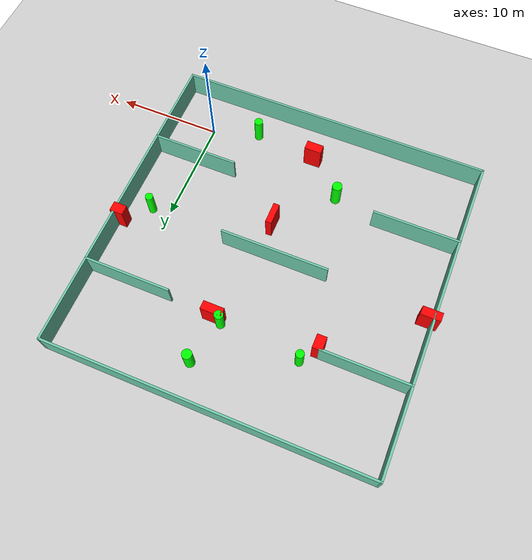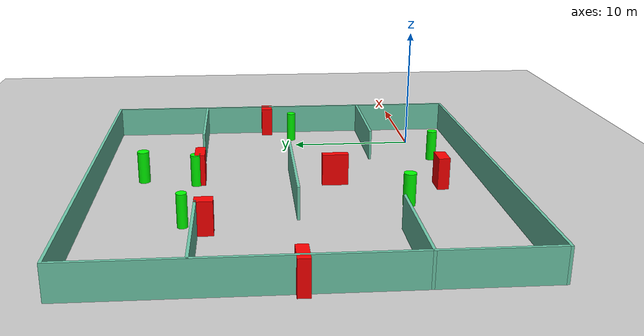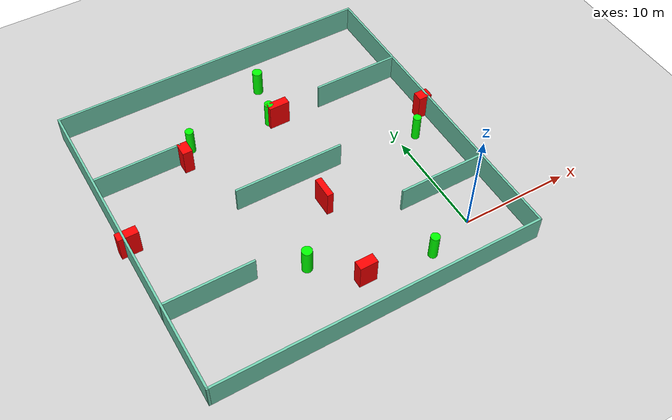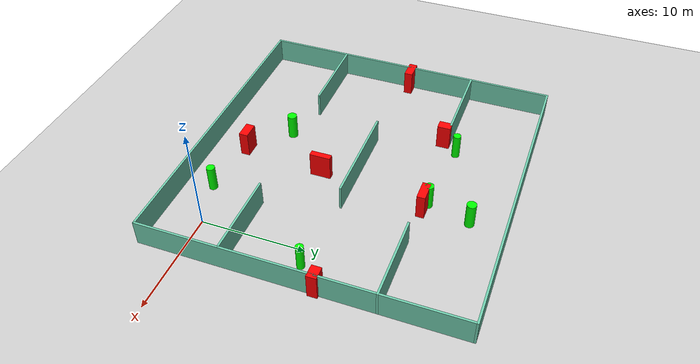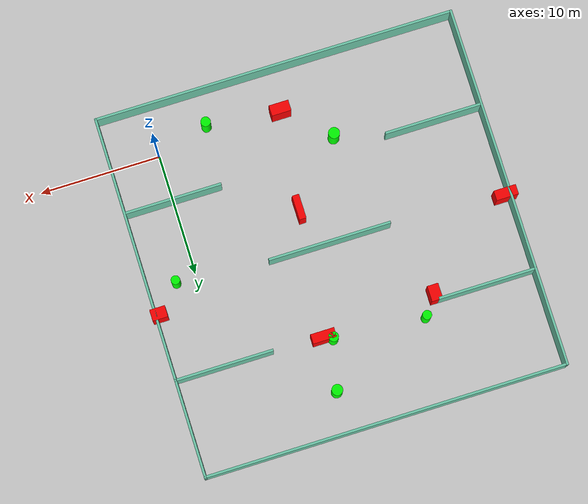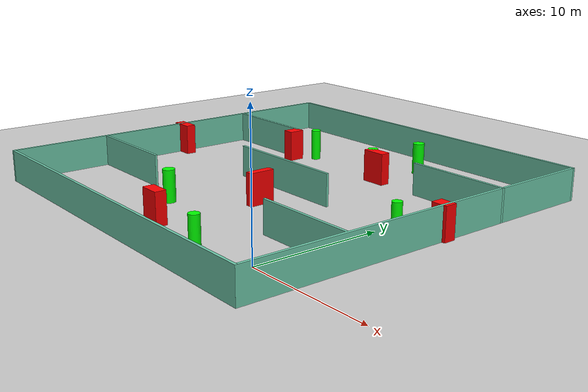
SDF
<sdf version="1.7">
 <world name="default">
  <light name="sun" type="directional">
   <pose>0 0 10 0 -0 0</pose>
   <diffuse>0.8 0.8 0.8 1</diffuse>
   <specular>0.2 0.2 0.2 1</specular>
   <attenuation>
    <range>1000</range>
    <constant>0.9</constant>
    <linear>0.01</linear>
    <quadratic>0.001</quadratic>
   </attenuation>
   <direction>-0.5 0.1 -0.9</direction>
   <spot><inner_angle>0</inner_angle><outer_angle>0</outer_angle><falloff>0</falloff></spot>
  </light>
  <model name="ground_plane">
   <static>1</static>
   <link name="link">
    <collision name="collision">
     <geometry><plane><normal>0 0 1</normal><size>100 100</size></plane></geometry>
     <surface>
      <contact><collide_bitmask>65535</collide_bitmask></contact>
      <friction><ode><mu>100</mu><mu2>50</mu2></ode></friction>
     </surface>
    </collision>
    <visual name="visual">
     <cast_shadows>0</cast_shadows>
     <geometry><plane><normal>0 0 1</normal><size>100 100</size></plane></geometry>
     <material>
      <script><uri>file://media/materials/scripts/gazebo.material</uri><name>Gazebo/Grey</name></script>
     </material>
    </visual>
   </link>
  </model>
  <gravity>0 0 -9.8</gravity>
  <magnetic_field>6e-06 2.3e-05 -4.2e-05</magnetic_field>
  <atmosphere type="adiabatic"/>
  <physics type="ode">
   <max_step_size>0.001</max_step_size>
   <real_time_factor>1</real_time_factor>
   <real_time_update_rate>1000</real_time_update_rate>
  </physics>
  <scene><ambient>0.4 0.4 0.4 1</ambient><background>0.7 0.7 0.7 1</background><shadows>1</shadows></scene>
  <spherical_coordinates>
   <surface_model>EARTH_WGS84</surface_model>
   <latitude_deg>0</latitude_deg>
   <longitude_deg>0</longitude_deg>
   <elevation>0</elevation>
   <heading_deg>0</heading_deg>
  </spherical_coordinates>
  <model name="my_base_walls">
   <link name="Wall_10">
    <collision name="Wall_10_Collision">
     <geometry><box><size>8.2 0.2 2.5</size></box></geometry>
     <pose>0 0 1.25 0 -0 0</pose>
    </collision>
    <visual name="Wall_10_Visual">
     <pose>0 0 1.25 0 -0 0</pose>
     <geometry><box><size>8.2 0.2 2.5</size></box></geometry>
     <material>
      <script><uri>file://media/materials/scripts/gazebo.material</uri><name>Gazebo/Grey</name></script>
      <ambient>0.435294 0.796078 0.67451 1</ambient>
     </material>
     <meta><layer>0</layer></meta>
    </visual>
    <pose>-11 -7 0 0 -0 0</pose>
   </link>
   <link name="Wall_12">
    <collision name="Wall_12_Collision">
     <geometry><box><size>8.2 0.2 2.5</size></box></geometry>
     <pose>0 0 1.25 0 -0 0</pose>
    </collision>
    <visual name="Wall_12_Visual">
     <pose>0 0 1.25 0 -0 0</pose>
     <geometry><box><size>8.2 0.2 2.5</size></box></geometry>
     <material>
      <script><uri>file://media/materials/scripts/gazebo.material</uri><name>Gazebo/Grey</name></script>
      <ambient>0.435294 0.796078 0.67451 1</ambient>
     </material>
     <meta><layer>0</layer></meta>
    </visual>
    <pose>-11 7 0 0 -0 0</pose>
   </link>
   <link name="Wall_14">
    <collision name="Wall_14_Collision">
     <geometry><box><size>8.2 0.2 2.5</size></box></geometry>
     <pose>0 0 1.25 0 -0 0</pose>
    </collision>
    <visual name="Wall_14_Visual">
     <pose>0 0 1.25 0 -0 0</pose>
     <geometry><box><size>8.2 0.2 2.5</size></box></geometry>
     <material>
      <script><uri>file://media/materials/scripts/gazebo.material</uri><name>Gazebo/Grey</name></script>
      <ambient>0.435294 0.796078 0.67451 1</ambient>
     </material>
     <meta><layer>0</layer></meta>
    </visual>
    <pose>11 7 0 0 -0 3.14159</pose>
   </link>
   <link name="Wall_16">
    <collision name="Wall_16_Collision">
     <geometry><box><size>10.2 0.2 2.5</size></box></geometry>
     <pose>0 0 1.25 0 -0 0</pose>
    </collision>
    <visual name="Wall_16_Visual">
     <pose>0 0 1.25 0 -0 0</pose>
     <geometry><box><size>10.2 0.2 2.5</size></box></geometry>
     <material>
      <script><uri>file://media/materials/scripts/gazebo.material</uri><name>Gazebo/Grey</name></script>
      <ambient>0.435294 0.796078 0.67451 1</ambient>
     </material>
     <meta><layer>0</layer></meta>
    </visual>
    <pose>0 0 0 0 -0 3.14159</pose>
   </link>
   <link name="Wall_2">
    <collision name="Wall_2_Collision">
     <geometry><box><size>30.2 0.2 2.5</size></box></geometry>
     <pose>0 0 1.25 0 -0 0</pose>
    </collision>
    <visual name="Wall_2_Visual">
     <pose>0 0 1.25 0 -0 0</pose>
     <geometry><box><size>30.2 0.2 2.5</size></box></geometry>
     <material>
      <script><uri>file://media/materials/scripts/gazebo.material</uri><name>Gazebo/Grey</name></script>
      <ambient>0.435294 0.796078 0.67451 1</ambient>
     </material>
     <meta><layer>0</layer></meta>
    </visual>
    <pose>0 -15 0 0 -0 3.14159</pose>
   </link>
   <link name="Wall_3">
    <collision name="Wall_3_Collision">
     <geometry><box><size>30.2 0.2 2.5</size></box></geometry>
     <pose>0 0 1.25 0 -0 0</pose>
    </collision>
    <visual name="Wall_3_Visual">
     <pose>0 0 1.25 0 -0 0</pose>
     <geometry><box><size>30.2 0.2 2.5</size></box></geometry>
     <material>
      <script><uri>file://media/materials/scripts/gazebo.material</uri><name>Gazebo/Grey</name></script>
      <ambient>0.435294 0.796078 0.67451 1</ambient>
     </material>
     <meta><layer>0</layer></meta>
    </visual>
    <pose>-15 0 0 0 -0 1.5708</pose>
   </link>
   <link name="Wall_4">
    <collision name="Wall_4_Collision">
     <geometry><box><size>30.2 0.2 2.5</size></box></geometry>
     <pose>0 0 1.25 0 -0 0</pose>
    </collision>
    <visual name="Wall_4_Visual">
     <pose>0 0 1.25 0 -0 0</pose>
     <geometry><box><size>30.2 0.2 2.5</size></box></geometry>
     <material>
      <script><uri>file://media/materials/scripts/gazebo.material</uri><name>Gazebo/Grey</name></script>
      <ambient>0.435294 0.796078 0.67451 1</ambient>
     </material>
     <meta><layer>0</layer></meta>
    </visual>
    <pose>0 15 0 0 -0 0</pose>
   </link>
   <link name="Wall_6">
    <collision name="Wall_6_Collision">
     <geometry><box><size>30.2 0.2 2.5</size></box></geometry>
     <pose>0 0 1.25 0 -0 0</pose>
    </collision>
    <visual name="Wall_6_Visual">
     <pose>0 0 1.25 0 -0 0</pose>
     <geometry><box><size>30.2 0.2 2.5</size></box></geometry>
     <material>
      <script><uri>file://media/materials/scripts/gazebo.material</uri><name>Gazebo/Grey</name></script>
      <ambient>0.435294 0.796078 0.67451 1</ambient>
     </material>
     <meta><layer>0</layer></meta>
    </visual>
    <pose>15 0 0 0 -0 1.5708</pose>
   </link>
   <link name="Wall_8">
    <collision name="Wall_8_Collision">
     <geometry><box><size>8.2 0.2 2.5</size></box></geometry>
     <pose>0 0 1.25 0 -0 0</pose>
    </collision>
    <visual name="Wall_8_Visual">
     <pose>0 0 1.25 0 -0 0</pose>
     <geometry><box><size>8.2 0.2 2.5</size></box></geometry>
     <material>
      <script><uri>file://media/materials/scripts/gazebo.material</uri><name>Gazebo/Grey</name></script>
      <ambient>0.435294 0.796078 0.67451 1</ambient>
     </material>
     <meta><layer>0</layer></meta>
    </visual>
    <pose>11 -7 0 0 -0 3.14159</pose>
   </link>
   <static>1</static>
   <pose>-11 11 0 0 -0 0</pose>
  </model>
  <model name="cylinder1">
   <static>1</static>
   <link name="link">
    <inertial>
     <mass>1</mass>
     <inertia><ixx>0.5</ixx><ixy>0</ixy><ixz>0</ixz><iyy>0.5</iyy><iyz>0</iyz><izz>1</izz></inertia>
    </inertial>
    <collision name="collision">
     <geometry><cylinder><radius>0.45576615456974046</radius><length>2.5</length></cylinder></geometry>
    </collision>
    <visual name="visual">
     <geometry><cylinder><radius>0.45576615456974046</radius><length>2.5</length></cylinder></geometry>
     <material>
      <ambient>0 1 0 1</ambient>
      <diffuse>0 1 0 1</diffuse>
      <specular>0.1 0.1 0.1 1</specular>
      <emissive>0 0 0 0</emissive>
     </material>
    </visual>
   </link>
   <pose>-7.98858308088303 22.54564964759097 1.25 0 0 0</pose>
  </model>
  <model name="cylinder2">
   <static>1</static>
   <link name="link">
    <inertial>
     <mass>1</mass>
     <inertia><ixx>0.5</ixx><ixy>0</ixy><ixz>0</ixz><iyy>0.5</iyy><iyz>0</iyz><izz>1</izz></inertia>
    </inertial>
    <collision name="collision">
     <geometry><cylinder><radius>0.41095859952349334</radius><length>2.5</length></cylinder></geometry>
    </collision>
    <visual name="visual">
     <geometry><cylinder><radius>0.41095859952349334</radius><length>2.5</length></cylinder></geometry>
     <material>
      <ambient>0 1 0 1</ambient>
      <diffuse>0 1 0 1</diffuse>
      <specular>0.1 0.1 0.1 1</specular>
      <emissive>0 0 0 0</emissive>
     </material>
    </visual>
   </link>
   <pose>-8.992939417291277 18.423315348993647 1.25 0 0 0</pose>
  </model>
  <model name="cylinder3">
   <static>1</static>
   <link name="link">
    <inertial>
     <mass>1</mass>
     <inertia><ixx>0.5</ixx><ixy>0</ixy><ixz>0</ixz><iyy>0.5</iyy><iyz>0</iyz><izz>1</izz></inertia>
    </inertial>
    <collision name="collision">
     <geometry><cylinder><radius>0.46532595379096947</radius><length>2.5</length></cylinder></geometry>
    </collision>
    <visual name="visual">
     <geometry><cylinder><radius>0.46532595379096947</radius><length>2.5</length></cylinder></geometry>
     <material>
      <ambient>0 1 0 1</ambient>
      <diffuse>0 1 0 1</diffuse>
      <specular>0.1 0.1 0.1 1</specular>
      <emissive>0 0 0 0</emissive>
     </material>
    </visual>
   </link>
   <pose>-13.960968821614841 2.7550779039016264 1.25 0 0 0</pose>
  </model>
  <model name="cylinder4">
   <static>1</static>
   <link name="link">
    <inertial>
     <mass>1</mass>
     <inertia><ixx>0.5</ixx><ixy>0</ixy><ixz>0</ixz><iyy>0.5</iyy><iyz>0</iyz><izz>1</izz></inertia>
    </inertial>
    <collision name="collision">
     <geometry><cylinder><radius>0.3684000201668095</radius><length>2.5</length></cylinder></geometry>
    </collision>
    <visual name="visual">
     <geometry><cylinder><radius>0.3684000201668095</radius><length>2.5</length></cylinder></geometry>
     <material>
      <ambient>0 1 0 1</ambient>
      <diffuse>0 1 0 1</diffuse>
      <specular>0.1 0.1 0.1 1</specular>
      <emissive>0 0 0 0</emissive>
     </material>
    </visual>
   </link>
   <pose>1.6663317486191076 10.348265304522709 1.25 0 0 0</pose>
  </model>
  <model name="cylinder5">
   <static>1</static>
   <link name="link">
    <inertial>
     <mass>1</mass>
     <inertia><ixx>0.5</ixx><ixy>0</ixy><ixz>0</ixz><iyy>0.5</iyy><iyz>0</iyz><izz>1</izz></inertia>
    </inertial>
    <collision name="collision">
     <geometry><cylinder><radius>0.40548245941133376</radius><length>2.5</length></cylinder></geometry>
    </collision>
    <visual name="visual">
     <geometry><cylinder><radius>0.40548245941133376</radius><length>2.5</length></cylinder></geometry>
     <material>
      <ambient>0 1 0 1</ambient>
      <diffuse>0 1 0 1</diffuse>
      <specular>0.1 0.1 0.1 1</specular>
      <emissive>0 0 0 0</emissive>
     </material>
    </visual>
   </link>
   <pose>-4.3915211612887735 -1.2030167889902632 1.25 0 0 0</pose>
  </model>
  <model name="cylinder6">
   <static>1</static>
   <link name="link">
    <inertial>
     <mass>1</mass>
     <inertia><ixx>0.5</ixx><ixy>0</ixy><ixz>0</ixz><iyy>0.5</iyy><iyz>0</iyz><izz>1</izz></inertia>
    </inertial>
    <collision name="collision">
     <geometry><cylinder><radius>0.38138712068178354</radius><length>2.5</length></cylinder></geometry>
    </collision>
    <visual name="visual">
     <geometry><cylinder><radius>0.38138712068178354</radius><length>2.5</length></cylinder></geometry>
     <material>
      <ambient>0 1 0 1</ambient>
      <diffuse>0 1 0 1</diffuse>
      <specular>0.1 0.1 0.1 1</specular>
      <emissive>0 0 0 0</emissive>
     </material>
    </visual>
   </link>
   <pose>-16.595528902066267 18.983022104685038 1.25 0 0 0</pose>
  </model>
  <model name="box1">
   <static>1</static>
   <link name="link">
    <inertial>
     <mass>1</mass>
     <inertia><ixx>0.083</ixx><ixy>0</ixy><ixz>0</ixz><iyy>0.083</iyy><iyz>0</iyz><izz>0.083</izz></inertia>
    </inertial>
    <collision name="collision">
     <geometry><box><size>0.5809707124337253 2.020719520146123 2.5</size></box></geometry>
    </collision>
    <visual name="visual">
     <geometry><box><size>0.5809707124337253 2.020719520146123 2.5</size></box></geometry>
     <material>
      <ambient>1 0 0 1</ambient>
      <diffuse>1 0 0 1</diffuse>
      <specular>0.1 0.1 0.1 1</specular>
      <emissive>0 0 0 0</emissive>
     </material>
    </visual>
    <sensor name="my_contact" type="contact">
     <contact><collision>box_collision</collision><topic>__default_topic__</topic></contact>
    </sensor>
   </link>
   <pose>-9.489712543614797 7.662986472383059 1.25 0 0 0</pose>
  </model>
  <model name="box2">
   <static>1</static>
   <link name="link">
    <inertial>
     <mass>1</mass>
     <inertia><ixx>0.083</ixx><ixy>0</ixy><ixz>0</ixz><iyy>0.083</iyy><iyz>0</iyz><izz>0.083</izz></inertia>
    </inertial>
    <collision name="collision">
     <geometry><box><size>1.8403050352264971 0.8181551363962452 2.5</size></box></geometry>
    </collision>
    <visual name="visual">
     <geometry><box><size>1.8403050352264971 0.8181551363962452 2.5</size></box></geometry>
     <material>
      <ambient>1 0 0 1</ambient>
      <diffuse>1 0 0 1</diffuse>
      <specular>0.1 0.1 0.1 1</specular>
      <emissive>0 0 0 0</emissive>
     </material>
    </visual>
    <sensor name="my_contact" type="contact">
     <contact><collision>box_collision</collision><topic>__default_topic__</topic></contact>
    </sensor>
   </link>
   <pose>-25.647726551428924 11.484313239466413 1.25 0 0 0</pose>
  </model>
  <model name="box3">
   <static>1</static>
   <link name="link">
    <inertial>
     <mass>1</mass>
     <inertia><ixx>0.083</ixx><ixy>0</ixy><ixz>0</ixz><iyy>0.083</iyy><iyz>0</iyz><izz>0.083</izz></inertia>
    </inertial>
    <collision name="collision">
     <geometry><box><size>1.62979175816036 0.8850476684640227 2.5</size></box></geometry>
    </collision>
    <visual name="visual">
     <geometry><box><size>1.62979175816036 0.8850476684640227 2.5</size></box></geometry>
     <material>
      <ambient>1 0 0 1</ambient>
      <diffuse>1 0 0 1</diffuse>
      <specular>0.1 0.1 0.1 1</specular>
      <emissive>0 0 0 0</emissive>
     </material>
    </visual>
    <sensor name="my_contact" type="contact">
     <contact><collision>box_collision</collision><topic>__default_topic__</topic></contact>
    </sensor>
   </link>
   <pose>-10.433337228283452 -0.4897272025910486 1.25 0 0 0</pose>
  </model>
  <model name="box4">
   <static>1</static>
   <link name="link">
    <inertial>
     <mass>1</mass>
     <inertia><ixx>0.083</ixx><ixy>0</ixy><ixz>0</ixz><iyy>0.083</iyy><iyz>0</iyz><izz>0.083</izz></inertia>
    </inertial>
    <collision name="collision">
     <geometry><box><size>0.9119987430346788 1.2927473990125131 2.5</size></box></geometry>
    </collision>
    <visual name="visual">
     <geometry><box><size>0.9119987430346788 1.2927473990125131 2.5</size></box></geometry>
     <material>
      <ambient>1 0 0 1</ambient>
      <diffuse>1 0 0 1</diffuse>
      <specular>0.1 0.1 0.1 1</specular>
      <emissive>0 0 0 0</emissive>
     </material>
    </visual>
    <sensor name="my_contact" type="contact">
     <contact><collision>box_collision</collision><topic>__default_topic__</topic></contact>
    </sensor>
   </link>
   <pose>-17.749220748745696 17.44930430981276 1.25 0 0 0</pose>
  </model>
  <model name="box5">
   <static>1</static>
   <link name="link">
    <inertial>
     <mass>1</mass>
     <inertia><ixx>0.083</ixx><ixy>0</ixy><ixz>0</ixz><iyy>0.083</iyy><iyz>0</iyz><izz>0.083</izz></inertia>
    </inertial>
    <collision name="collision">
     <geometry><box><size>1.9508653905875548 0.7900039983444098 2.5</size></box></geometry>
    </collision>
    <visual name="visual">
     <geometry><box><size>1.9508653905875548 0.7900039983444098 2.5</size></box></geometry>
     <material>
      <ambient>1 0 0 1</ambient>
      <diffuse>1 0 0 1</diffuse>
      <specular>0.1 0.1 0.1 1</specular>
      <emissive>0 0 0 0</emissive>
     </material>
    </visual>
    <sensor name="my_contact" type="contact">
     <contact><collision>box_collision</collision><topic>__default_topic__</topic></contact>
    </sensor>
   </link>
   <pose>-8.251801082165906 18.110786269927292 1.25 0 0 0</pose>
  </model>
  <model name="box6">
   <static>1</static>
   <link name="link">
    <inertial>
     <mass>1</mass>
     <inertia><ixx>0.083</ixx><ixy>0</ixy><ixz>0</ixz><iyy>0.083</iyy><iyz>0</iyz><izz>0.083</izz></inertia>
    </inertial>
    <collision name="collision">
     <geometry><box><size>1.2674551823547908 0.9361898718268462 2.5</size></box></geometry>
    </collision>
    <visual name="visual">
     <geometry><box><size>1.2674551823547908 0.9361898718268462 2.5</size></box></geometry>
     <material>
      <ambient>1 0 0 1</ambient>
      <diffuse>1 0 0 1</diffuse>
      <specular>0.1 0.1 0.1 1</specular>
      <emissive>0 0 0 0</emissive>
     </material>
    </visual>
    <sensor name="my_contact" type="contact">
     <contact><collision>box_collision</collision><topic>__default_topic__</topic></contact>
    </sensor>
   </link>
   <pose>3.7139923195763025 12.500874449380028 1.25 0 0 0</pose>
  </model>
 </world>
</sdf>
